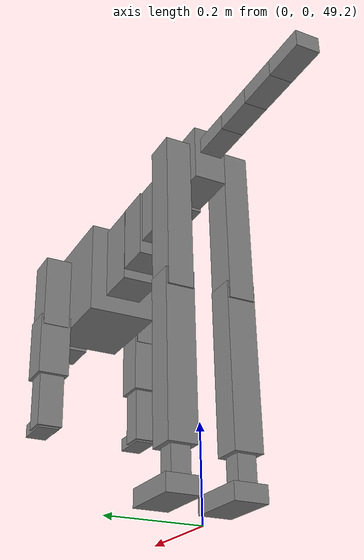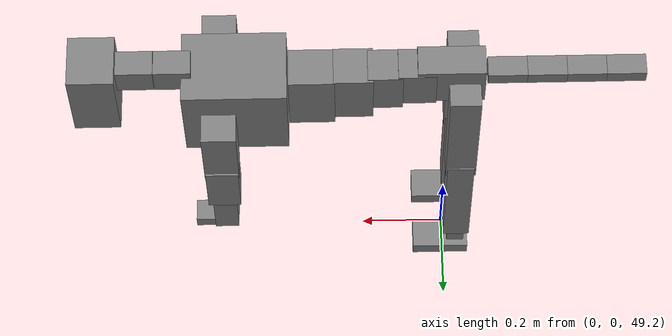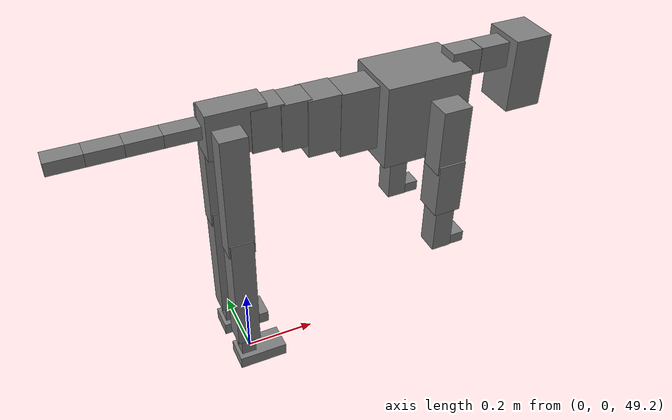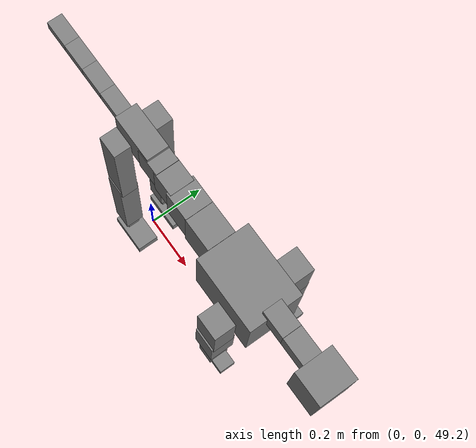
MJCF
<mujoco model="dog">

    <default>
        <joint armature="0.02" stiffness="1" damping="0.2" limited="true"/>
        <geom condim="3" friction="1 0.05 0.05" margin="0.01"/>
        <motor ctrllimited="true" ctrlrange="-1.0 1.0" forcelimited="true" gear="50"/>
    </default>

    <compiler inertiafromgeom="true" angle="radian"/>

    <option timestep="0.016" iterations="50" tolerance="1e-10" solver="Newton" jacobian="dense" cone="pyramidal"/>

    <size nconmax="20000" njmax="60000" nstack="5000000"/>
    <visual>
        <map force="0.1" zfar="30"/>
        <rgba haze="0.15 0.25 0.35 1"/>
        <quality shadowsize="2048"/>
        <global offwidth="800" offheight="800"/>
    </visual>

    <asset>
        <texture type="skybox" builtin="gradient" rgb1="0.3 0.5 0.7" rgb2="0 0 0" width="512" height="512"/>
        <texture name="texplane" type="2d" builtin="checker" rgb1=".2 .3 .4" rgb2=".1 0.15 0.2" width="512" height="512"
                 mark="cross" markrgb=".8 .8 .8"/>
        <texture name="texgeom" type="cube" builtin="flat" mark="cross" width="127" height="1278" rgb1="0.8 0.6 0.4"
                 rgb2="0.8 0.6 0.4" markrgb="1 1 1" random="0.01"/>

        <material name="matplane" reflectance="0.3" texture="texplane" texrepeat="1 1" texuniform="true"/>
        <material name="matgeom" texture="texgeom" texuniform="true" rgba="0.8 0.6 .4 1"/>
    </asset>

    <worldbody>
        <geom name="floor" pos="0 0 0" size="0 0 .25" type="plane" material="matplane" condim="3"/>

        <light directional="false" diffuse=".2 .2 .2" specular="0 0 0" pos="0 0 5" dir="0 0 -1" castshadow="false"/>
        <light mode="targetbodycom" target="torso" directional="false" diffuse=".8 .8 .8" specular="0.3 0.3 0.3"
               pos="0 0 4.0" dir="0 0 -1"/>

        <body name="root" pos="0 0 50">
            <freejoint name="root_1"/>
            <geom type="box" pos="0 0 -0.02" size="0.0774  0.0358  0.063" density="2030"/>

            <body name="spine1" pos="0.054 0 0">
                <joint name="spine1_y" axis="0 1 0" range="0 0.7" limited="true"/>
                <geom type="box" pos="0.02375 0 -0.03" size="0.04375  0.0375  0.05985" density="2030"/>

                <body name="spine2" pos="0.0612 0 0">
                    <joint name="spine2_y" axis="0 1 0" range="-0.15 0.15" limited="true"/>
                    <geom type="box" pos="0.03555  0  -0.04" size="0.04055  0.039  0.06615" density="2030"/>

                    <body name="spine3" pos="0.0730 0 0">
                        <joint name="spine3_y" axis="0 1 0" range="-0.15 0.15" limited="true"/>
                        <geom type="box" pos="0.03555  0  -0.057" size="0.04555  0.0445  0.081" density="2030"/>

                        <body name="spine4" pos="0.0780 0 0">
                            <joint name="spine4_y" axis="0 1 0" range="-0.15 0.15" limited="true"/>
                            <geom type="box" pos="0.05265  0  -0.07" size="0.05265  0.045  0.09135" density="2030"/>

                            <body name="torso" pos="0.1082 0 0">
                                <joint name="torso_y" axis="0 1 0" range="-0.15 0.15" limited="true"/>
                                <geom type="box" pos="0.11925  0  -0.085" size="0.11925  0.085  0.11745"
                                      density="2030"/>

                                <body name="neck1" pos="0.2160  0   0.0180">
                                    <joint name="neck1_y" axis="0 1 0" range="-1.2  -1" limited="true"/>
                                    <geom type="box" pos="0.0423  0  0" size="0.0423  0.03  0.036" density="2325"/>

                                    <body name="neck2" pos="0.0853  0  0">
                                        <joint name="neck2_y" axis="0 1 0" range="0.1  0" limited="true"/>
                                        <geom type="box" pos="0.0423  0  0" size="0.0423  0.03  0.036" density="2325"/>

                                        <body name="head" pos="0.0853  0  0">
                                            <joint name="head_y" axis="0 1 0" range="-0.3  -0.2" limited="true"/>
                                            <geom type="box" pos="0.0531  0  -0.055" size="0.0531  0.06  0.1044"
                                                  density="4030"/>

                                        </body>
                                    </body>
                                </body>

                                <body name="front_shoulder" pos="0.156  0   -0.0480">
                                    <joint name="front_shoulder_y" axis="0 1 0" range="-1 1.5" limited="true"/>
                                    <geom type="box" pos="0 0.13 -0.0676" size="0.0396  0.0338  0.0943" density="1158"/>
                                    <geom type="box" pos="0 -0.13 -0.0676" size="0.0396  0.0338  0.0943"
                                          density="1158"/>

                                    <body name="front_elbow" pos="0  0  -0.1353">
                                        <joint name="front_elbow_y" axis="0 1 0" range="-2 0" limited="true"/>
                                        <geom type="box" pos="0 0.13 -0.0782" size="0.0380  0.0389  0.0782"
                                              density="1081"/>
                                        <geom type="box" pos="0 -0.13 -0.0782" size="0.0380  0.0389  0.0782"
                                              density="1081"/>

                                        <body name="front_wrist" pos="0  0  -0.1565">
                                            <joint name="front_wrist_y" axis="0 1 0" range="-0.2 0" limited="true"/>
                                            <geom type="box" pos="0 0.13 -0.0592" size="0.0280  0.0312  0.0723"
                                                  density="1664"/>
                                            <geom type="box" pos="0 -0.13 -0.0592" size="0.0280  0.0312  0.0723"
                                                  density="1664"/>

                                            <body name="front_finger_end" pos="0  0  -0.1184">
                                                <joint name="front_finger_y" axis="0 1 0" range="-0.4 1"
                                                       limited="true"/>
                                                <geom type="box" pos="0.0258  0.13  -0.0010"
                                                      size="0.0472  0.0258  0.0160" density="1515"/>
                                                <geom type="box" pos="0.0258  -0.13  -0.0010"
                                                      size="0.0472  0.0258  0.0160" density="1515"/>

                                            </body>

                                        </body>
                                    </body>
                                </body>

                            </body>
                        </body>
                    </body>
                </body>
            </body>

            <body name="back_hip" pos="-0.03 0 -0.018">
                <joint name="back_hip_y" axis="0 1 0" range="-1.5 0.3" limited="true"/>
                <geom type="box" pos="0 0.07 -0.1532" size="0.0358  0.0281  0.1760" density="1154"/>
                <geom type="box" pos="0 -0.07 -0.1532" size="0.0358  0.0281  0.1760" density="1154"/>

                <body name="back_knee" pos="0  0  -0.3064">
                    <joint name="back_knee_y" axis="0 1 0" range="0 2.8" limited="true"/>
                    <geom type="box" pos="0 0.07 -0.1637" size="0.0319  0.0315  0.1792" density="1227"/>
                    <geom type="box" pos="0 -0.07 -0.1637" size="0.0319  0.0315  0.1792" density="1227"/>

                    <body name="back_ankle" pos="0  0  -0.3273">
                        <joint name="back_ankle_y" axis="0 1 0" range="-2.2 0" limited="true"/>
                        <geom type="box" pos="0 0.07 -0.0439" size="0.0207  0.0207  0.0552" density="1284"/>
                        <geom type="box" pos="0 -0.07 -0.0439" size="0.0207  0.0207  0.0552" density="1284"/>

                        <body name="back_toe_end" pos="0  0  -0.0879">
                            <joint name="back_toe_y" axis="0 1 0" range="-0.4 1" limited="true"/>
                            <geom type="box" pos="0.0371  0.07  -0.0035" size="0.0680  0.0371  0.0185" density="1515"/>
                            <geom type="box" pos="0.0371  -0.07  -0.0035" size="0.0680  0.0371  0.0185" density="1515"/>

                        </body>
                    </body>
                </body>
            </body>

            <body name="tail1" pos="-0.074 0 -0.006">
                <joint name="tail1_y" axis="0 1 0" range="-0.2 0.2" limited="true"/>
                <geom type="box" pos="-0.0536  0  0" size="0.045  0.025  0.0175" density="1587"/>

                <body name="tail2" pos="-0.09 0 0">
                    <joint name="tail2_y" axis="0 1 0" range="-0.2 0.2" limited="true"/>
                    <geom type="box" pos="-0.0536  0  0" size="0.045  0.025  0.0175" density="1587"/>

                    <body name="tail3" pos="-0.09 0 0">
                        <joint name="tail3_y" axis="0 1 0" range="-0.2 0.2" limited="true"/>
                        <geom type="box" pos="-0.0536  0  0" size="0.045  0.025  0.0175" density="1587"/>

                        <body name="tail4" pos="-0.09 0 0">
                            <joint name="tail4_y" axis="0 1 0" range="-0.2 0.2" limited="true"/>
                            <geom type="box" pos="-0.0536  0  0" size="0.045  0.025  0.0175" density="1587"/>

                        </body>
                    </body>
                </body>
            </body>
        </body>
    </worldbody>

    <actuator>
        <motor joint="spine1_y" forcerange="-150 150     "/>
        <motor joint="spine2_y" forcerange="-150 150     "/>
        <motor joint="spine3_y" forcerange="-150 150     "/>
        <motor joint="spine4_y" forcerange="-150 150     "/>
        <motor joint="torso_y" forcerange="-150 150     "/>
        <motor joint="neck1_y" forcerange="-100 100       "/>
        <motor joint="neck2_y" forcerange="-100 100       "/>
        <motor joint="head_y" forcerange="-150 150       "/>
        <motor joint="front_shoulder_y" forcerange="-157.46 168.15"/>
        <motor joint="front_elbow_y" forcerange="-193.33 189.54"/>
        <motor joint="front_wrist_y" forcerange="-111.47 137.82"/>
        <motor joint="front_finger_y" forcerange="-25.49 71.86"/>
        <motor joint="back_hip_y" forcerange="-230.09 344.55"/>
        <motor joint="back_knee_y" forcerange="-358.76 299.23"/>
        <motor joint="back_angle_y" forcerange="-76.86 154.37"/>
        <motor joint="back_toe_y" forcerange="-96.66 120.26"/>
        <motor joint="tail1_y" forcerange="-50 50     "/>
        <motor joint="tail2_y" forcerange="-50 50     "/>
        <motor joint="tail3_y" forcerange="-50 50     "/>
        <motor joint="tail4_y" forcerange="-50 50     "/>
    </actuator>
</mujoco>
